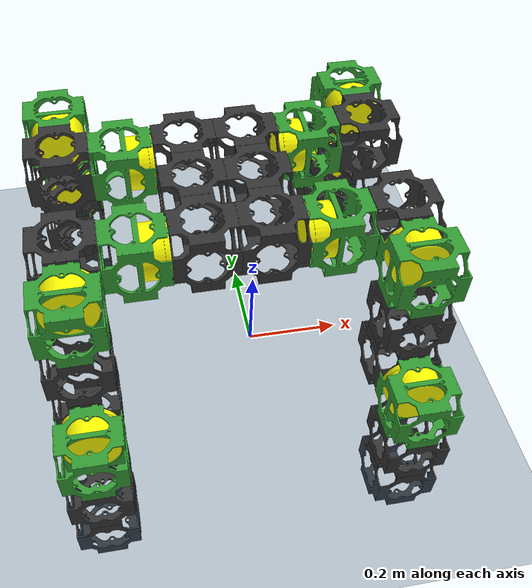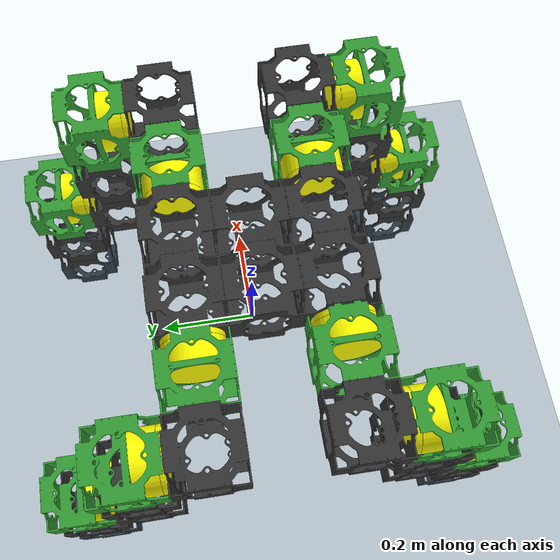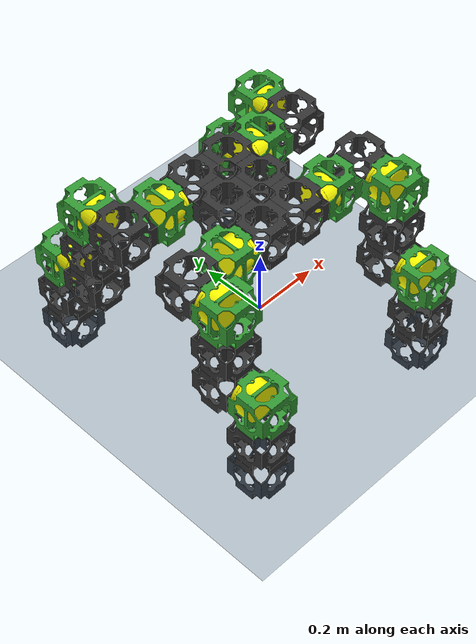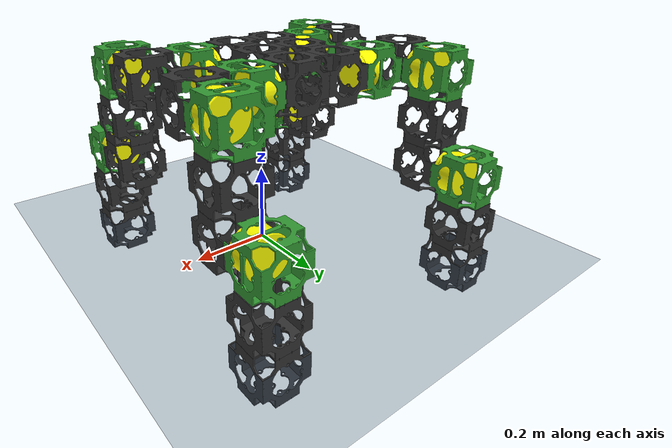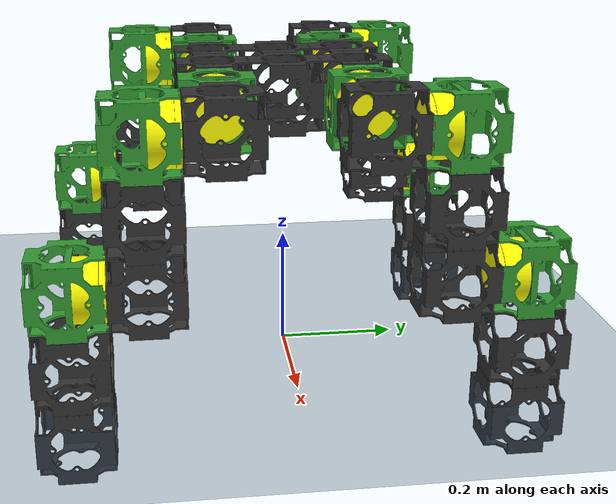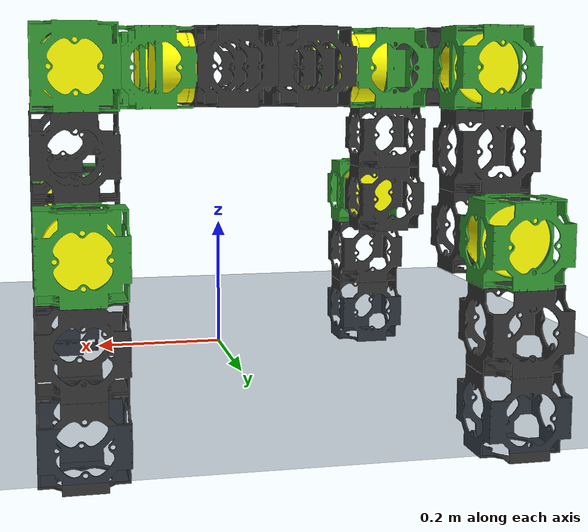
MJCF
<mujoco model="ur5e scene">
  <include file="dog_2_vis.xml"/>

  <statistic center="0.3 0 0.3" extent="0.8" meansize="0.08"/>

  <visual>
    <headlight diffuse="0.6 0.6 0.6" ambient="0.1 0.1 0.1" specular="0 0 0"/>
    <global azimuth="120" elevation="-20"/>
  </visual>

  <asset>
    <texture name="grid" type="2d" builtin="checker" rgb1=".2 .3 .4" rgb2=".1 0.15 0.2" width="512" height="512"
      mark="cross" markrgb=".8 .8 .8"/>
    <material name="grid" texture="grid" texrepeat="1 1" texuniform="true"/>
  </asset>

  <worldbody>
    <light pos="0 0 1.5" directional="true"/>
  </worldbody>

</mujoco>

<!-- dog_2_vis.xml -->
<mujoco model="modular_robot">
    <compiler angle="radian" meshdir="assets" texturedir="assets" autolimits="true"/>
    <option timestep="0.002"/>
    <option gravity="0 0 -9.81"/>
    <statistic center="0 0 0.1" extent="0.6"/>
    <visual>
        <headlight diffuse="0.6 0.6 0.6" ambient="0.1 0.1 0.1" specular="0 0 0"/>
        <global azimuth="120" elevation="-20"/>
        <rgba haze="0.15 0.25 0.35 1"/>
    </visual>
    <asset>
        <!-- 地面纹理 -->
        <texture type="2d" name="groundplane" builtin="checker" mark="edge" rgb1="0.2 0.3 0.4" rgb2="0.1 0.2 0.3"
        markrgb="0.8 0.8 0.8" width="300" height="300"/>
        <material name="groundplane" texture="groundplane" texuniform="true" texrepeat="5 5" reflectance="0.2"/>
        <!-- 装配机械臂的网格 -->
        <mesh name="arm0_link" content_type="model/stl" file="arm0_link.STL"/>
        <mesh name="arm1_link" content_type="model/stl" file="arm1_link.STL"/>
        <mesh name="arm2_link" content_type="model/stl" file="arm2_link.STL"/>
        <mesh name="arm3_link" content_type="model/stl" file="arm3_link.STL"/>
        <mesh name="arm4_link" content_type="model/stl" file="arm4_link.STL"/>
        <mesh name="arm5_link" content_type="model/stl" file="arm5_link.STL"/>
        <mesh name="arm6_link" content_type="model/stl" file="arm6_link.STL"/>
        <mesh name="cube_wheel" content_type="model/stl" file="wheel_link.STL"/>

        <!-- 模块化机器人的网格 -->
        <mesh name="body" file="cube_base.STL"/>
        <mesh name="cube_shell" file="cube_shell.STL"/>
        <mesh name="cube_motor" file="cube_motor.STL"/>
    </asset>
    <default>
        <default class="base_collision">
            <geom type="mesh" mesh="body" pos="0.0055426 0.056 -0.01" mass="0.5" contype="0" conaffinity="0" rgba="0.2 0.2 0.2 1"/>
        </default>
        <default class="joint_collision">
            <geom type="box" size="0.06 0.06 0.06" pos="0 0 0" mass="0.5" contype="0" conaffinity="0" rgba="0.2 0.8 0.2 0"/>
        </default>
        <default class="end_collision">
            <geom type="box" size="0.06 0.06 0.06" pos="0 0 0" mass="0.5" contype="0" conaffinity="1" rgba="0.8 0.2 0.2 0" friction="0.6" />
        </default>
        <default class="wheel_collision">
            <geom type="box" size="0.06 0.06 0.06" pos="0 0 0" mass="0.5" contype="0" conaffinity="0" rgba="0.2 0.8 0.2 0"/>
        </default>
        <default class="wheel_tire_collision">
            <geom type="cylinder" size="0.085 0.01" pos="0 0 0" mass="0.5" quat="0 0 0.707 0.707" contype="0" conaffinity="1" rgba="0.2 0.8 0.2 0" friction="1.0"/>
        </default>
        <default class="foot_site">
            <site type="sphere" size="0.0175" pos="0 0 0" rgba="0.3 0.6 0.8 0" />
        </default>
        <default class="joint+y">
            <joint type="hinge" axis="0 1 0" pos="0 0 0" damping="0.1" armature="0.01"/>
        </default>
        <default class="joint-y">
            <joint type="hinge" axis="0 -1 0" pos="0 0 0" damping="0.1" armature="0.01"/>
        </default>
        <default class="joint+x">
            <joint type="hinge" axis="1 0 0" pos="0 0 0" damping="0.1" armature="0.01"/>
        </default>
        <default class="joint-x">
            <joint type="hinge" axis="-1 0 0" pos="0 0 0" damping="0.1" armature="0.01"/>
        </default>
        <default class="wheel+y">
            <joint type="hinge" axis="0 1 0" pos="0 0 0"/>
        </default>
        <default class="wheel-y">
            <joint type="hinge" axis="0 1 0" pos="0 0 0"/>
        </default>
        <default class="joint_motor">
            <motor ctrlrange="-100 100"/>
        </default>
        <default class="wheel_velocity">
            <position kv="10" forcelimited="true" forcerange="-500 500"/>
        </default>
    </default>

    <worldbody>
        <light pos="0 0 1.5" dir="0 0 -1" directional="true"/>
        <geom name="floor" size="0 0 0.05" type="plane" material="groundplane"/>
        <body name="module1" pos="0 0 0.45">
            <freejoint/>
            <geom class="base_collision"/>

                <body name="module6" pos="0 0.12 0">
                    <geom class="base_collision"/>

                    <body name="modulex1" pos="0.12 0 0">
                        <geom class="joint_collision"/>
                        <body name="joint_modulex1" pos="0 0 0" quat="0 -0.7071 0 0.7071">
                            <inertial pos="0 0 0.029868" quat="0.5 0.5 -0.5 0.5" mass="0.50619" diaginertia="0.00068135 0.00049154 0.00049154"/>
                            <geom type="mesh" rgba="1 1 0 1" mesh="cube_motor"/>
                            <body name="joint_modulex1_shell" pos="0.0055426 -0.011957 -0.054801" quat="0.707105 -0.707108 0 0">
                                <geom type="mesh" rgba="0.2 0.6 0.2 1" mesh="cube_shell"/>
                            </body>
                        </body>
                        <joint class="joint-x" name="modulex1_joint"/>
                        <body name="module17" pos="0.12 0 0">
                            <geom class="base_collision"/>

                            <body name="module21" pos="0 0.12 0" quat="0.707 0 0.707 0">
                                <geom class="joint_collision"/>

                                <joint class="joint-y" name="module21_joint"/>
                                <body name="joint_module21" pos="0 0 0" quat="0.707 0.707 0 0">
                                    <geom type="mesh" rgba="1 1 0 1" mesh="cube_motor"/>
                                    <body name="joint_module21_shell" pos="0.0055426 -0.011957 -0.054801" quat="0.707105 -0.707108 0 0">
                                        <geom type="mesh" rgba="0.2 0.6 0.2 1" mesh="cube_shell"/>
                                    </body>
                                </body>
                                <body name="module25" pos="0.12 0 0">
                                    <geom class="base_collision"/>

                                    <body name="module29" pos="0.12 0 0">
                                        <geom class="base_collision"/>

                                        <body name="module33" pos="0 0.12 0">
                                            <geom class="joint_collision"/>

                                            <joint class="joint-y" name="module33_joint"/>
                                            <body name="joint_module33" pos="0 0 0" quat="0.707 0.707 0 0">
                                                <inertial pos="0 0 0.029868" quat="0.5 0.5 -0.5 0.5" mass="0.50619" diaginertia="0.00068135 0.00049154 0.00049154"/>
                                                <geom type="mesh" rgba="1 1 0 1" mesh="cube_motor"/>
                                                <body name="joint_module33_shell" pos="0.0055426 -0.011957 -0.054801" quat="0.707105 -0.707108 0 0">
                                                    <geom type="mesh" rgba="0.2 0.6 0.2 1" mesh="cube_shell"/>
                                                </body>
                                            </body>
                                            <body name="module37" pos="0.12 0 0">
                                                <geom class="base_collision"/>

                                                <body name="module41" pos="0.12 0 0">
                                                    <geom class="base_collision"/>
                                                    <geom class="end_collision"/>
                                                    <site name="FL_foot" class="foot_site" pos="0.06 0 -0.06"/>
                                                </body>
                                            </body>
                                        </body>
                                    </body>
                                </body>
                            </body>
                        </body>
                    </body>
                </body>
                <body name="module7" pos="0 -0.12 0">
                    <geom class="base_collision"/>

                    <body name="modulex2" pos="0.12 0 0">
                        <geom class="joint_collision"/>

                        <joint class="joint-x" name="modulex2_joint"/>
                        <body name="joint_modulex2" pos="0 0 0" quat="0 -0.7071 0 0.7071">
                            <inertial pos="0 0 0.029868" quat="0.5 0.5 -0.5 0.5" mass="0.50619" diaginertia="0.00068135 0.00049154 0.00049154"/>
                            <geom type="mesh" rgba="1 1 0 1" mesh="cube_motor"/>
                            <body name="joint_modulex2_shell" pos="0.0055426 -0.011957 -0.054801" quat="0.707105 -0.707108 0 0">
                                <geom type="mesh" rgba="0.2 0.6 0.2 1" mesh="cube_shell"/>
                            </body>
                        </body>
                        <body name="module18" pos="0.12 0 0">
                            <geom class="base_collision"/>

                            <body name="module22" pos="0 -0.12 0" quat="0.707 0 0.707 0">
                                <geom class="joint_collision"/>

                                <joint class="joint-y" name="module22_joint"/>
                                <body name="joint_module22" pos="0 0 0" quat="-0.707 0.707 0 0">
                                    <inertial pos="0 0 0.029868" quat="0.5 0.5 -0.5 0.5" mass="0.50619" diaginertia="0.00068135 0.00049154 0.00049154"/>
                                    <geom type="mesh" rgba="1 1 0 1" mesh="cube_motor"/>
                                    <body name="joint_module22_shell" pos="0.0055426 -0.011957 -0.054801" quat="0.707105 -0.707108 0 0">
                                        <geom type="mesh" rgba="0.2 0.6 0.2 1" mesh="cube_shell"/>
                                    </body>
                                </body>
                                <body name="module26" pos="0.12 0 0">
                                    <geom class="base_collision"/>

                                    <body name="module30" pos="0.12 0 0">
                                        <geom class="base_collision"/>

                                        <body name="module34" pos="0 -0.12 0">
                                            <geom class="joint_collision"/>

                                            <joint class="joint-y" name="module34_joint"/>
                                            <body name="joint_module34" pos="0 0 0" quat="-0.707 0.707 0 0">
                                                <inertial pos="0 0 0.029868" quat="0.5 0.5 -0.5 0.5" mass="0.50619" diaginertia="0.00068135 0.00049154 0.00049154"/>
                                                <geom type="mesh" rgba="1 1 0 1" mesh="cube_motor"/>
                                                <body name="joint_module34_shell" pos="0.0055426 -0.011957 -0.054801" quat="0.707105 -0.707108 0 0">
                                                    <geom type="mesh" rgba="0.2 0.6 0.2 1" mesh="cube_shell"/>
                                                </body>
                                            </body>
                                            <body name="module38" pos="0.12 0 0">
                                                <geom class="base_collision"/>

                                                <body name="module42" pos="0.12 0 0">
                                                    <geom class="base_collision"/>
                                                    <geom class="end_collision"/>
                                                    <site name="FR_foot" class="foot_site" pos="0.06 0 -0.06"/>
                                                </body>
                                            </body>
                                        </body>
                                    </body>
                                </body>
                            </body>
                        </body>
                    </body>
                </body>

            <body name="module5" pos="-0.12 0 0">
                <geom class="base_collision"/>

                <body name="module9" pos="0 0.12 0">
                    <geom class="base_collision"/>

                    <body name="modulex3" pos="-0.12 0 0">
                        <geom class="joint_collision"/>

                        <joint class="joint+x" name="modulex3_joint"/>
                        <body name="joint_modulex3" pos="0 0 0" quat="0 0.7071 0 0.7071">
                            <geom type="mesh" rgba="1 1 0 1" mesh="cube_motor"/>
                            <body name="joint_modulex3_shell" pos="0.0055426 -0.011957 -0.054801" quat="0.707105 -0.707108 0 0">
                                <geom type="mesh" rgba="0.2 0.6 0.2 1" mesh="cube_shell"/>
                            </body>
                        </body>
                        <body name="module19" pos="-0.12 0 0">
                            <geom class="base_collision"/>

                            <body name="module23" pos="0 0.12 0" quat="0.707 0 -0.707 0">
                                <geom class="joint_collision"/>

                                <joint class="joint+y" name="module23_joint"/>
                                <body name="joint_module23" pos="0 0 0" quat="0.707 0.707 0 0">
                                    <geom type="mesh" rgba="1 1 0 1" mesh="cube_motor"/>
                                    <body name="joint_module23_shell" pos="0.0055426 -0.011957 -0.054801" quat="0.707105 -0.707108 0 0">
                                        <geom type="mesh" rgba="0.2 0.6 0.2 1" mesh="cube_shell"/>
                                    </body>
                                </body>
                                <body name="module27" pos="-0.12 0 0">
                                    <geom class="base_collision"/>

                                    <body name="module31" pos="-0.12 0 0">
                                        <geom class="base_collision"/>

                                        <body name="module35" pos="0 0.12 0">
                                            <geom class="joint_collision"/>

                                            <joint class="joint+y" name="module35_joint"/>
                                            <body name="joint_module35" pos="0 0 0" quat="0.707 0.707 0 0">
                                                <inertial pos="0 0 0.029868" quat="0.5 0.5 -0.5 0.5" mass="0.50619" diaginertia="0.00068135 0.00049154 0.00049154"/>
                                                <geom type="mesh" rgba="1 1 0 1" mesh="cube_motor"/>
                                                <body name="joint_module35_shell" pos="0.0055426 -0.011957 -0.054801" quat="0.707105 -0.707108 0 0">
                                                    <geom type="mesh" rgba="0.2 0.6 0.2 1" mesh="cube_shell"/>
                                                </body>
                                            </body>
                                            <body name="module39" pos="-0.12 0 0">
                                                <geom class="base_collision"/>

                                                <body name="module43" pos="-0.12 0 0">
                                                    <geom class="base_collision"/>
                                                    <geom class="end_collision"/>
                                                    <site name="RL_foot" class="foot_site" pos="-0.06 0 0.06"/>
                                                </body>
                                            </body>
                                        </body>
                                    </body>
                                </body>
                            </body>
                        </body>
                    </body>
                </body>
                <body name="module10" pos="0 -0.12 0">
                    <geom class="base_collision"/>

                    <body name="modulex4" pos="-0.12 0 0">
                        <geom class="joint_collision"/>

                        <joint class="joint+x" name="modulex4_joint"/>
                        <body name="joint_modulex4" pos="0 0 0" quat="0 0.7071 0 0.7071">
                            <inertial pos="0 0 0.029868" quat="0.5 0.5 -0.5 0.5" mass="0.50619" diaginertia="0.00068135 0.00049154 0.00049154"/>
                            <geom type="mesh" rgba="1 1 0 1" mesh="cube_motor"/>
                            <body name="joint_modulex4_shell" pos="0.0055426 -0.011957 -0.054801" quat="0.707105 -0.707108 0 0">
                                <geom type="mesh" rgba="0.2 0.6 0.2 1" mesh="cube_shell"/>
                            </body>
                        </body>
                        <body name="module20" pos="-0.12 0 0">
                            <geom class="base_collision"/>

                            <body name="module24" pos="0 -0.12 0" quat="0.707 0 -0.707 0">
                                <geom class="joint_collision"/>

                                <joint class="joint+y" name="module24_joint"/>
                                <body name="joint_module24" pos="0 0 0" quat="-0.707 0.707 0 0">
                                    <inertial pos="0 0 0.029868" quat="0.5 0.5 -0.5 0.5" mass="0.50619" diaginertia="0.00068135 0.00049154 0.00049154"/>
                                    <geom type="mesh" rgba="1 1 0 1" mesh="cube_motor"/>
                                    <body name="joint_module24_shell" pos="0.0055426 -0.011957 -0.054801" quat="0.707105 -0.707108 0 0">
                                        <geom type="mesh" rgba="0.2 0.6 0.2 1" mesh="cube_shell"/>
                                    </body>
                                </body>
                                <body name="module28" pos="-0.12 0 0">
                                    <geom class="base_collision"/>

                                    <body name="module32" pos="-0.12 0 0">
                                        <geom class="base_collision"/>

                                        <body name="module36" pos="0 -0.12 0">
                                            <geom class="joint_collision"/>

                                            <joint class="joint+y" name="module36_joint"/>
                                            <body name="joint_module36" pos="0 0 0" quat="-0.707 0.707 0 0">
                                                <inertial pos="0 0 0.029868" quat="0.5 0.5 -0.5 0.5" mass="0.50619" diaginertia="0.00068135 0.00049154 0.00049154"/>
                                                <geom type="mesh" rgba="1 1 0 1" mesh="cube_motor"/>
                                                <body name="joint_module36_shell" pos="0.0055426 -0.011957 -0.054801" quat="0.707105 -0.707108 0 0">
                                                    <geom type="mesh" rgba="0.2 0.6 0.2 1" mesh="cube_shell"/>
                                                </body>
                                            </body>
                                            <body name="module40" pos="-0.12 0 0">
                                                <geom class="base_collision"/>

                                                <body name="module44" pos="-0.12 0 0">
                                                    <geom class="base_collision"/>
                                                    <geom class="end_collision"/>
                                                    <site name="RR_foot" class="foot_site" pos="-0.06 0 0.06"/>
                                                </body>
                                            </body>
                                        </body>
                                    </body>
                                </body>
                            </body>
                        </body>
                    </body>
                </body>
            </body>
        </body>
    </worldbody>
    <actuator>
        <motor name="modulex1_joint_actuator" joint="modulex1_joint" class="joint_motor"/>
        <motor name="module21_joint_actuator" joint="module21_joint" class="joint_motor"/>
        <motor name="module33_joint_actuator" joint="module33_joint" class="joint_motor"/>
        <motor name="modulex2_joint_actuator" joint="modulex2_joint" class="joint_motor"/>
        <motor name="module22_joint_actuator" joint="module22_joint" class="joint_motor"/>
        <motor name="module34_joint_actuator" joint="module34_joint" class="joint_motor"/>
        <motor name="modulex3_joint_actuator" joint="modulex3_joint" class="joint_motor"/>
        <motor name="module23_joint_actuator" joint="module23_joint" class="joint_motor"/>
        <motor name="module35_joint_actuator" joint="module35_joint" class="joint_motor"/>
        <motor name="modulex4_joint_actuator" joint="modulex4_joint" class="joint_motor"/>
        <motor name="module24_joint_actuator" joint="module24_joint" class="joint_motor"/>
        <motor name="module36_joint_actuator" joint="module36_joint" class="joint_motor"/>

    </actuator>

    <keyframe>
        <key name="home" qpos="0 0 0.38 1 0 0 0 0 0.9 -1.8 0 0.9 -1.8 0 0.9 -1.8 0 0.9 -1.8" />
        <key name="tiling" qpos="0 0 0.06 1 0 0 0 0 1.571 3.141 0 1.571 3.141 0 1.571 3.141 0 1.571 3.141" />
    </keyframe>
</mujoco>
